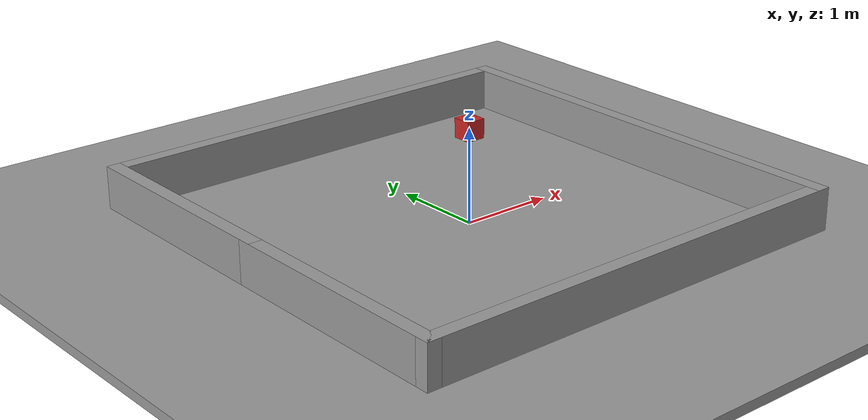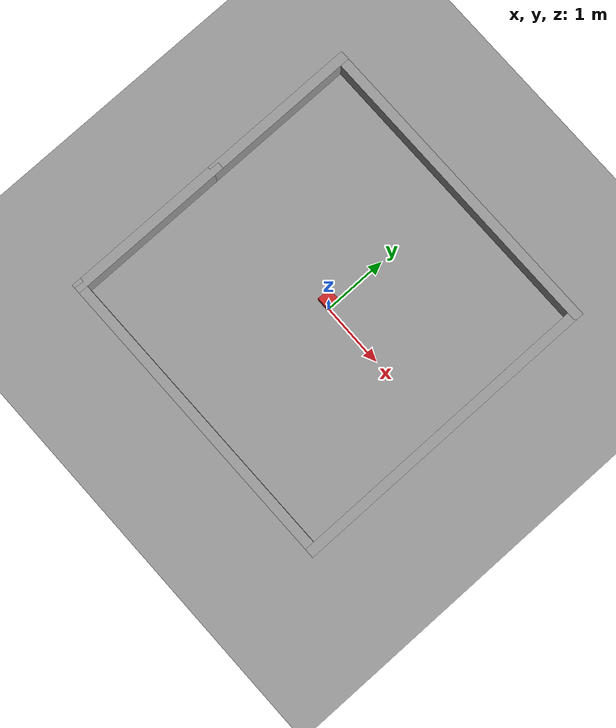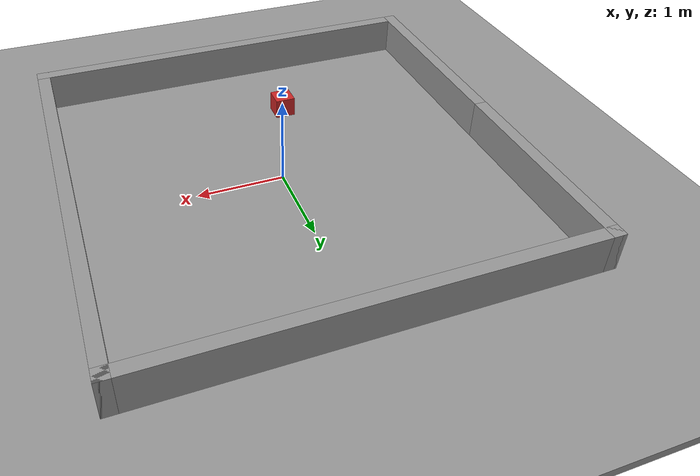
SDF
<sdf version="1.6">
 <world name="default">
  <light name="sun" type="directional">
   <pose>0 0 10 0 -0 0</pose>
   <diffuse>0.8 0.8 0.8 1</diffuse>
   <specular>0.2 0.2 0.2 1</specular>
   <attenuation>
    <range>1000</range>
    <constant>0.9</constant>
    <linear>0.01</linear>
    <quadratic>0.001</quadratic>
   </attenuation>
   <direction>-0.5 0.1 -0.9</direction>
  </light>
  <model name="ground_plane">
   <static>1</static>
   <link name="link">
    <collision name="collision">
     <geometry><plane><normal>0 0 1</normal><size>100 100</size></plane></geometry>
     <surface>
      <contact><collide_bitmask>65535</collide_bitmask></contact>
      <friction><ode><mu>100</mu><mu2>50</mu2></ode></friction>
     </surface>
    </collision>
    <visual name="visual">
     <cast_shadows>0</cast_shadows>
     <geometry><plane><normal>0 0 1</normal><size>100 100</size></plane></geometry>
     <material>
      <script><uri>file://media/materials/scripts/gazebo.material</uri><name>Gazebo/Grey</name></script>
     </material>
    </visual>
   </link>
  </model>
  <gravity>0 0 -9.8</gravity>
  <magnetic_field>6e-06 2.3e-05 -4.2e-05</magnetic_field>
  <atmosphere type="adiabatic"/>
  <physics name="default_physics" default="0" type="ode">
   <max_step_size>0.001</max_step_size>
   <real_time_factor>1</real_time_factor>
   <real_time_update_rate>1000</real_time_update_rate>
  </physics>
  <scene><ambient>0.4 0.4 0.4 1</ambient><background>0.7 0.7 0.7 1</background><shadows>1</shadows></scene>
  <spherical_coordinates>
   <surface_model>EARTH_WGS84</surface_model>
   <latitude_deg>0</latitude_deg>
   <longitude_deg>0</longitude_deg>
   <elevation>0</elevation>
   <heading_deg>0</heading_deg>
  </spherical_coordinates>
  <model name="goal">
   <link name="Goal">
    <inertial>
     <mass>1</mass>
     <inertia><ixx>1</ixx><ixy>0</ixy><ixz>0</ixz><iyy>1</iyy><iyz>0</iyz><izz>1</izz></inertia>
    </inertial>
    <visual name="Goal_visual">
     <geometry><box><size>0.2 0.2 0.2</size></box></geometry>
     <material>
      <script><name>Gazebo/Red</name><uri>file://media/materials/scripts/gazebo.material</uri></script>
     </material>
    </visual>
    <gravity>0</gravity>
    <gravity>0</gravity>
   </link>
   <pose>0 0 1 0 -0 0</pose>
  </model>
  <model name="ground_plane_0">
   <static>1</static>
   <link name="link">
    <collision name="collision">
     <geometry><plane><normal>0 0 1</normal><size>100 100</size></plane></geometry>
     <surface>
      <contact><collide_bitmask>65535</collide_bitmask></contact>
      <friction><ode><mu>100</mu><mu2>50</mu2></ode></friction>
     </surface>
    </collision>
    <visual name="visual">
     <cast_shadows>0</cast_shadows>
     <geometry><plane><normal>0 0 1</normal><size>100 100</size></plane></geometry>
     <material>
      <script><uri>file://media/materials/scripts/gazebo.material</uri><name>Gazebo/Grey</name></script>
     </material>
    </visual>
   </link>
   <pose>-6.40473 0.635507 0 0 -0 0</pose>
  </model>
  <model name="Trianingroom">
   <pose>-0.06247 0.03367 0 0 -0 0</pose>
   <link name="Wall_17">
    <collision name="Wall_17_Collision">
     <geometry><box><size>2.5 0.15 0.5</size></box></geometry>
     <pose>0 0 0.25 0 -0 0</pose>
    </collision>
    <visual name="Wall_17_Visual">
     <pose>0 0 0.25 0 -0 0</pose>
     <geometry><box><size>2.5 0.15 0.5</size></box></geometry>
     <material>
      <script><uri>file://media/materials/scripts/gazebo.material</uri><name>Gazebo/Grey</name></script>
      <ambient>1 1 1 1</ambient>
     </material>
     <meta><layer>0</layer></meta>
    </visual>
    <pose>-2.425 1.25 0 0 -0 1.5708</pose>
   </link>
   <link name="Wall_18">
    <collision name="Wall_18_Collision">
     <geometry><box><size>5 0.15 0.5</size></box></geometry>
     <pose>0 0 0.25 0 -0 0</pose>
    </collision>
    <visual name="Wall_18_Visual">
     <pose>0 0 0.25 0 -0 0</pose>
     <geometry><box><size>5 0.15 0.5</size></box></geometry>
     <material>
      <script><uri>file://media/materials/scripts/gazebo.material</uri><name>Gazebo/Grey</name></script>
      <ambient>1 1 1 1</ambient>
     </material>
     <meta><layer>0</layer></meta>
    </visual>
    <pose>-0 2.425 0 0 -0 0</pose>
   </link>
   <link name="Wall_19">
    <collision name="Wall_19_Collision">
     <geometry><box><size>5 0.15 0.5</size></box></geometry>
     <pose>0 0 0.25 0 -0 0</pose>
    </collision>
    <visual name="Wall_19_Visual">
     <pose>0 0 0.25 0 -0 0</pose>
     <geometry><box><size>5 0.15 0.5</size></box></geometry>
     <material>
      <script><uri>file://media/materials/scripts/gazebo.material</uri><name>Gazebo/Grey</name></script>
      <ambient>1 1 1 1</ambient>
     </material>
     <meta><layer>0</layer></meta>
    </visual>
    <pose>2.425 -0 0 0 -0 -1.5708</pose>
   </link>
   <link name="Wall_20">
    <collision name="Wall_20_Collision">
     <geometry><box><size>5 0.15 0.5</size></box></geometry>
     <pose>0 0 0.25 0 -0 0</pose>
    </collision>
    <visual name="Wall_20_Visual">
     <pose>0 0 0.25 0 -0 0</pose>
     <geometry><box><size>5 0.15 0.5</size></box></geometry>
     <material>
      <script><uri>file://media/materials/scripts/gazebo.material</uri><name>Gazebo/Grey</name></script>
      <ambient>1 1 1 1</ambient>
     </material>
     <meta><layer>0</layer></meta>
    </visual>
    <pose>-0 -2.425 0 0 -0 3.14159</pose>
   </link>
   <link name="Wall_21">
    <collision name="Wall_21_Collision">
     <geometry><box><size>2.65 0.15 0.5</size></box></geometry>
     <pose>0 0 0.25 0 -0 0</pose>
    </collision>
    <visual name="Wall_21_Visual">
     <pose>0 0 0.25 0 -0 0</pose>
     <geometry><box><size>2.65 0.15 0.5</size></box></geometry>
     <material>
      <script><uri>file://media/materials/scripts/gazebo.material</uri><name>Gazebo/Grey</name></script>
      <ambient>1 1 1 1</ambient>
     </material>
     <meta><layer>0</layer></meta>
    </visual>
    <pose>-2.425 -1.175 0 0 -0 1.5708</pose>
   </link>
   <static>1</static>
  </model>
 </world>
</sdf>
